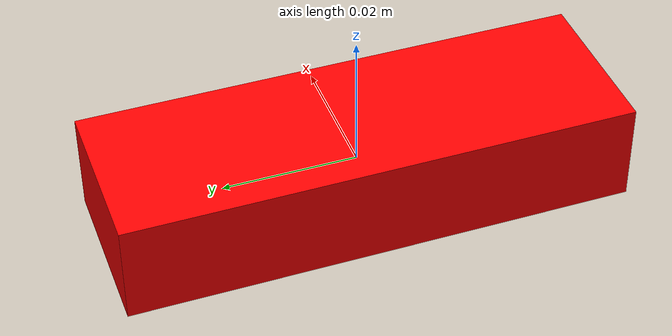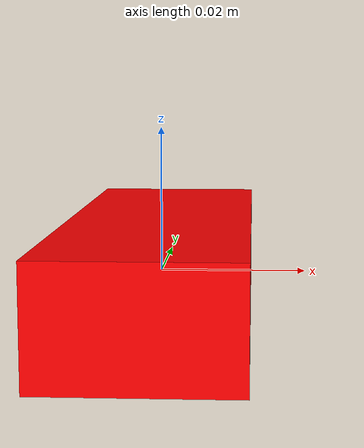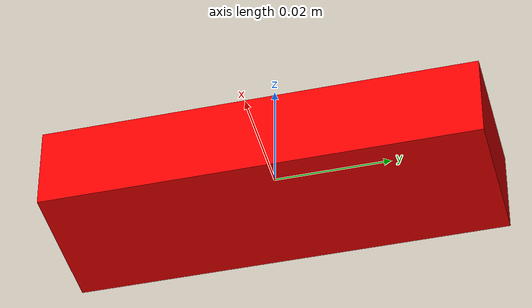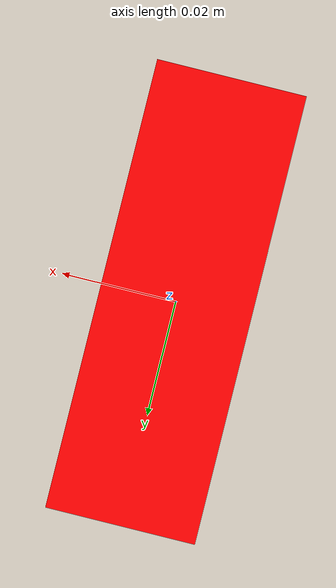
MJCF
<?xml version="1.0" encoding="utf-8"?>
<mujoco>
  <asset>
    <material name="block_mat" rgba="1.0 0 0 1.0" specular="0.25" shininess="0.10" reflectance="0.10"></material>
  </asset>
  <worldbody>
    <body name="jenga">
      <geom type="box" size=".0125 .0375 .0075" material="block_mat" />
      <joint type="free"/>
    </body>
  </worldbody>
</mujoco>
